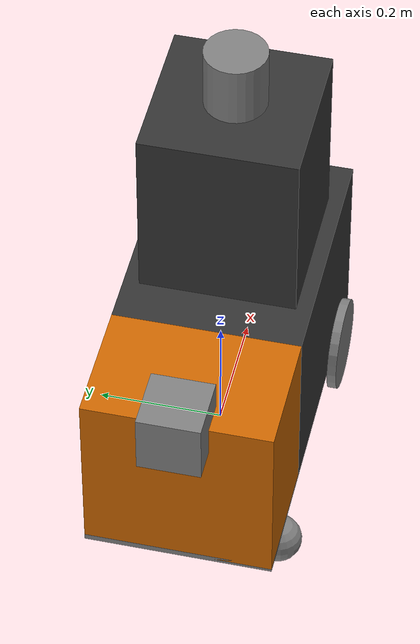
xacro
<?xml version="1.0"?>
<robot name="dodobot" xmlns:xacro="http://www.ros.org/wiki/xacro">
  <material name="orange">
    <color rgba="0.8 0.4 0.0 1.0"/>
  </material>

  <material name="black">
    <color rgba="0.2 0.2 0.2 1.0"/>
  </material>

  <material name="gray">
    <color rgba="0.5 0.5 0.5 1.0"/>
  </material>

  <!-- Base Link -->
  <link name="base_link">
    <inertial>
      <origin xyz="0 0 0.005" rpy="0 0 0"/>
      <mass value="5"/>
      <inertia ixx="0.0395" ixy="0" ixz="0" iyy="0.106" iyz="0" izz="0.145"/>
    </inertial>
    <visual>
      <origin xyz="0 0 0.005" rpy="0 0 0"/>
      <geometry>
        <box size="0.6 0.3 0.01"/>
      </geometry>
      <material name="gray"/>
    </visual>
    <collision>
      <origin xyz="0 0 0.005" rpy="0 0 0"/>
      <geometry>
        <box size="0.6 0.3 0.01"/>
      </geometry>
    </collision>
  </link>

  <gazebo reference="base_link">
    <material>Gazebo/Gray</material>
    <mu1>0.1</mu1>
    <mu2>0.1</mu2>
  </gazebo>

  <!-- Compartment 1 -->
  <link name="compartment_1">
    <inertial>
      <origin xyz="0 0 0" rpy="0 0 0"/>
      <mass value="2"/>
      <inertia ixx="0.0275" ixy="0" ixz="0" iyy="0.0275" iyz="0" izz="0.015"/>
    </inertial>
    <visual>
      <origin xyz="0 0 0" rpy="0 0 0"/>
      <geometry>
        <box size="0.4 0.30 0.30"/>
      </geometry>
      <material name="black"/>
    </visual>
    <collision>
      <origin xyz="0 0 0" rpy="0 0 0"/>
      <geometry>
        <box size="0.4 0.30 0.30"/>
      </geometry>
    </collision>
  </link>

  <gazebo reference="compartment_1">
    <material>Gazebo/Black</material>
  </gazebo>

  <joint name="base_to_compartment_1" type="fixed">
    <parent link="base_link"/>
    <child link="compartment_1"/>
    <origin xyz="0.10 0 0.155" rpy="0 0 0"/>
  </joint>

  <!-- Compartment 2 -->
  <link name="compartment_2">
    <inertial>
      <origin xyz="0 0 0" rpy="0 0 0"/>
      <mass value="1"/>
      <inertia ixx="0.0108" ixy="0" ixz="0" iyy="0.0083" iyz="0" izz="0.0058"/>
    </inertial>
    <visual>
      <origin xyz="0 0 0" rpy="0 0 0"/>
      <geometry>
        <box size="0.20 0.30 0.30"/>
      </geometry>
      <material name="orange"/>
    </visual>
    <collision>
      <origin xyz="0 0 0" rpy="0 0 0"/>
      <geometry>
        <box size="0.20 0.30 0.30"/>
      </geometry>
    </collision>
  </link>

  <gazebo reference="compartment_2">
    <material>Gazebo/Orange</material>
  </gazebo>

  <joint name="base_to_compartment_2" type="fixed">
    <parent link="base_link"/>
    <child link="compartment_2"/>
    <origin xyz="-0.20 0 0.155" rpy="0 0 0"/>
  </joint>

  <!-- Compartment 3 -->
  <link name="compartment_3">
    <inertial>
      <origin xyz="0 0 0" rpy="0 0 0"/>
      <mass value="1.5"/>
      <inertia ixx="0.0234375" ixy="0" ixz="0" iyy="0.0234375" iyz="0" izz="0.015625"/>
    </inertial>
    <visual>
      <origin xyz="0 0 0" rpy="0 0 0"/>
      <geometry>
        <box size="0.25 0.25 0.30"/>
      </geometry>
      <material name="black"/>
    </visual>
    <collision>
      <origin xyz="0 0 0" rpy="0 0 0"/>
      <geometry>
        <box size="0.25 0.25 0.30"/>
      </geometry>
    </collision>
  </link>

  <gazebo reference="compartment_3">
    <material>Gazebo/Black</material>
  </gazebo>

  <joint name="compartment_1_to_compartment_3" type="fixed">
    <parent link="compartment_1"/>
    <child link="compartment_3"/>
    <origin xyz="0 0 0.30" rpy="0 0 0"/>
  </joint>

  <!-- Left Compartment 1 Wheel -->
  <link name="left_compartment_1_wheel">
    <inertial>
      <origin xyz="0 0 0" rpy="0 0 0"/>
      <mass value="0.5"/>
      <inertia ixx="0.000703" ixy="0" ixz="0" iyy="0.000703" iyz="0" izz="0.001406"/>
    </inertial>
    <visual>
      <origin xyz="0 0 0" rpy="1.5708 0 0"/>
      <geometry>
        <cylinder radius="0.075" length="0.015"/>
      </geometry>
      <material name="gray"/>
    </visual>
    <collision>
      <origin xyz="0 0 0" rpy="1.5708 0 0"/>
      <geometry>
        <cylinder radius="0.075" length="0.015"/>
      </geometry>
    </collision>
  </link>

  <gazebo reference="left_compartment_1_wheel">
    <material>Gazebo/Gray</material>
    <mu1>1.0</mu1>
    <mu2>1.0</mu2>
  </gazebo>

  <joint name="base_to_left_compartment_1_wheel" type="continuous">
    <parent link="base_link"/>
    <child link="left_compartment_1_wheel"/>
    <origin xyz="0.20 0.1575 0" rpy="0 0 0"/>
    <axis xyz="0 1 0"/>
  </joint>

  <!-- Right Compartment 1 Wheel -->
  <link name="right_compartment_1_wheel">
    <inertial>
      <origin xyz="0 0 0" rpy="0 0 0"/>
      <mass value="0.5"/>
      <inertia ixx="0.000703" ixy="0" ixz="0" iyy="0.000703" iyz="0" izz="0.001406"/>
    </inertial>
    <visual>
      <origin xyz="0 0 0" rpy="1.5708 0 0"/>
      <geometry>
        <cylinder radius="0.075" length="0.015"/>
      </geometry>
      <material name="gray"/>
    </visual>
    <collision>
      <origin xyz="0 0 0" rpy="1.5708 0 0"/>
      <geometry>
        <cylinder radius="0.075" length="0.015"/>
      </geometry>
    </collision>
  </link>

  <gazebo reference="right_compartment_1_wheel">
    <material>Gazebo/Gray</material>
    <mu1>1.0</mu1>
    <mu2>1.0</mu2>
  </gazebo>

  <joint name="base_to_right_compartment_1_wheel" type="continuous">
    <parent link="base_link"/>
    <child link="right_compartment_1_wheel"/>
    <origin xyz="0.20 -0.1575 0" rpy="0 0 0"/>
    <axis xyz="0 1 0"/>
  </joint>

  <!-- Left Compartment 2 Wheel (Caster) -->
  <link name="left_compartment_2_wheel">
    <inertial>
      <origin xyz="0 0 0" rpy="0 0 0"/>
      <mass value="0.05"/>
      <inertia ixx="0.0000281" ixy="0" ixz="0" iyy="0.0000281" iyz="0" izz="0.0000281"/>
    </inertial>
    <visual>
      <origin xyz="0 0 0" rpy="0 0 0"/>
      <geometry>
        <sphere radius="0.0375"/>
      </geometry>
      <material name="gray"/>
    </visual>
    <collision>
      <origin xyz="0 0 0" rpy="0 0 0"/>
      <geometry>
        <sphere radius="0.0375"/>
      </geometry>
    </collision>
  </link>

  <gazebo reference="left_compartment_2_wheel">
    <material>Gazebo/Gray</material>
    <mu1>0.1</mu1>
    <mu2>0.1</mu2>
  </gazebo>

  <joint name="base_to_left_compartment_2_wheel" type="fixed">
    <parent link="base_link"/>
    <child link="left_compartment_2_wheel"/>
    <origin xyz="-0.20 0.14 -0.0375" rpy="0 0 0"/>
  </joint>

  <!-- Right Compartment 2 Wheel (Caster) -->
  <link name="right_compartment_2_wheel">
    <inertial>
      <origin xyz="0 0 0" rpy="0 0 0"/>
      <mass value="0.05"/>
      <inertia ixx="0.0000281" ixy="0" ixz="0" iyy="0.0000281" iyz="0" izz="0.0000281"/>
    </inertial>
    <visual>
      <origin xyz="0 0 0" rpy="0 0 0"/>
      <geometry>
        <sphere radius="0.0375"/>
      </geometry>
      <material name="gray"/>
    </visual>
    <collision>
      <origin xyz="0 0 0" rpy="0 0 0"/>
      <geometry>
        <sphere radius="0.0375"/>
      </geometry>
    </collision>
  </link>

  <gazebo reference="right_compartment_2_wheel">
    <material>Gazebo/Gray</material>
    <mu1>0.1</mu1>
    <mu2>0.1</mu2>
  </gazebo>

  <joint name="base_to_right_compartment_2_wheel" type="fixed">
    <parent link="base_link"/>
    <child link="right_compartment_2_wheel"/>
    <origin xyz="-0.20 -0.14 -0.0375" rpy="0 0 0"/>
  </joint>

  <!-- LiDAR -->
  <link name="lidar_link">
    <inertial>
      <mass value="0.1"/>
      <inertia ixx="0.000166667" iyy="0.000166667" izz="0.000166667" ixy="0" ixz="0" iyz="0"/>
    </inertial>
    <collision>
      <geometry>
        <cylinder radius="0.05" length="0.1"/>
      </geometry>
    </collision>
    <visual>
      <geometry>
        <cylinder radius="0.05" length="0.1"/>
      </geometry>
      <material name="gray"/>
    </visual>
  </link>

  <joint name="compartment_3_to_lidar" type="fixed">
    <parent link="compartment_3"/>
    <child link="lidar_link"/>
    <origin xyz="0 0 0.20" rpy="0 0 0"/>
  </joint>

  <gazebo reference="lidar_link">
    <sensor name="gpu_lidar" type="gpu_lidar">
      <topic>lidar</topic>
      <update_rate>10</update_rate>
      <lidar>
        <scan>
          <horizontal>
            <samples>360</samples>
            <resolution>1</resolution>
            <min_angle>-3.14159</min_angle>
            <max_angle>3.14159</max_angle>
          </horizontal>
        </scan>
        <range>
          <min>0.1</min>
          <max>10.0</max>
          <resolution>0.01</resolution>
        </range>
      </lidar>
      <always_on>true</always_on>
      <visualize>true</visualize>
    </sensor>
  </gazebo>

  <!-- Wide Angle Camera -->
  <link name="wide_angle_camera_link">
    <inertial>
      <mass value="0.1"/>
      <inertia ixx="0.000166667" iyy="0.000166667" izz="0.000166667" ixy="0" ixz="0" iyz="0"/>
    </inertial>
    <visual>
      <geometry>
        <box size="0.1 0.1 0.1"/>
      </geometry>
      <material name="gray"/>
    </visual>
    <collision>
      <geometry>
        <box size="0.1 0.1 0.1"/>
      </geometry>
    </collision>
  </link>

  <joint name="compartment_1_to_camera" type="fixed">
    <parent link="compartment_1"/>
    <child link="wide_angle_camera_link"/>
    <origin xyz="0.20 0 0.15" rpy="0 0 0"/>
  </joint>

  <gazebo reference="wide_angle_camera_link">
    <sensor name="wide_angle_camera" type="camera">
      <topic>wide_angle_camera</topic>
      <update_rate>30.0</update_rate>
      <camera name="wide_angle">
        <horizontal_fov>1.3962634</horizontal_fov>
        <image>
          <width>800</width>
          <height>600</height>
          <format>R8G8B8</format>
        </image>
        <clip>
          <near>0.02</near>
          <far>300</far>
        </clip>
      </camera>
      <always_on>true</always_on>
      <visualize>true</visualize>
    </sensor>
  </gazebo>

  <!-- Rear Wide Angle Camera -->
  <link name="rear_wide_angle_camera_link">
    <inertial>
      <mass value="0.1"/>
      <inertia ixx="0.000166667" iyy="0.000166667" izz="0.000166667" ixy="0" ixz="0" iyz="0"/>
    </inertial>
    <visual>
      <geometry>
        <box size="0.1 0.1 0.1"/>
      </geometry>
      <material name="gray"/>
    </visual>
    <collision>
      <geometry>
        <box size="0.1 0.1 0.1"/>
      </geometry>
    </collision>
  </link>

  <joint name="compartment_2_to_rear_camera" type="fixed">
    <parent link="compartment_2"/>
    <child link="rear_wide_angle_camera_link"/>
    <origin xyz="-0.10 0 0.15" rpy="0 0 3.14159"/>
  </joint>

  <gazebo reference="rear_wide_angle_camera_link">
    <sensor name="rear_wide_angle_camera" type="camera">
      <topic>rear_wide_angle_camera</topic>
      <update_rate>30.0</update_rate>
      <camera name="rear_wide_angle">
        <horizontal_fov>1.3962634</horizontal_fov>
        <image>
          <width>800</width>
          <height>600</height>
          <format>R8G8B8</format>
        </image>
        <clip>
          <near>0.02</near>
          <far>300</far>
        </clip>
      </camera>
      <always_on>true</always_on>
      <visualize>true</visualize>
    </sensor>
  </gazebo>

  <!-- ROS2 Control -->
  <ros2_control name="GazeboSimSystem" type="system">
    <hardware>
      <plugin>gz_ros2_control/GazeboSimSystem</plugin>
    </hardware>
    <joint name="base_to_left_compartment_1_wheel">
      <command_interface name="velocity">
        <param name="min">-10</param>
        <param name="max">10</param>
      </command_interface>
      <state_interface name="position"/>
      <state_interface name="velocity"/>
    </joint>
    <joint name="base_to_right_compartment_1_wheel">
      <command_interface name="velocity">
        <param name="min">-10</param>
        <param name="max">10</param>
      </command_interface>
      <state_interface name="position"/>
      <state_interface name="velocity"/>
    </joint>
  </ros2_control>

  <!-- Gazebo plugin -->
  <gazebo>
    <plugin filename="libgz_ros2_control-system.so" name="gz_ros2_control::GazeboSimROS2ControlPlugin">
      <parameters>$(find fyp_ws)/config/controller.yaml</parameters>
    </plugin>
  </gazebo>

</robot>
